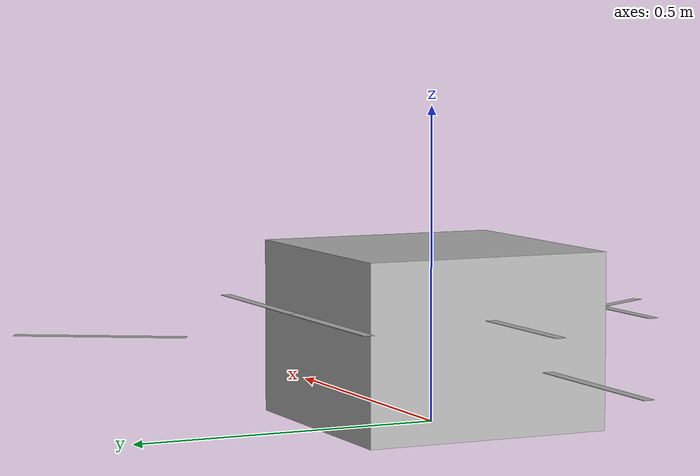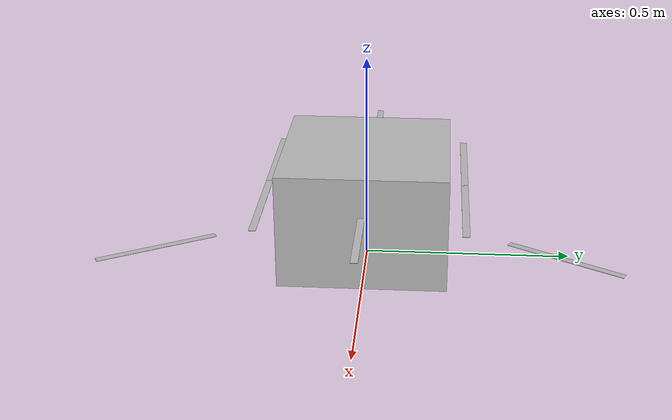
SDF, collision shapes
<?xml version="1.0" encoding="UTF-8"?>
<sdf version='1.9'>
  <model name='torsional_uav'>
    <pose>0 0 0.14113 0 0 0</pose>
    <self_collide>false</self_collide>
    <static>false</static>
    <link name="base_link">
      <inertial>
        <pose>0 0 0 0 0 0</pose>
        <mass>3.0</mass>
        <inertia>
          <ixx>0.02166666666666667</ixx>
          <ixy>0</ixy>
          <ixz>0</ixz>
          <iyy>0.02166666666666667</iyy>
          <iyz>0</iyz>
          <izz>0.04000000000000001</izz>
        </inertia>
      </inertial>
      <gravity>true</gravity>
      <velocity_decay/>
      <visual name="base_link_visual">
        <pose>0 0 0  0 0 0</pose>
        <geometry>
          <mesh>
            <scale>1 1 1</scale>
            <uri>model://torsional_uav/meshes/f550_frame_board.dae</uri>
          </mesh>
        </geometry>
      </visual>
      <collision name="base_link_collision">
        <pose> 0 0 0 0 0 0</pose>
        <geometry>
          <box>
            <size>0.40 0.40 0.278 </size>
          </box>
        </geometry>
        <surface>
          <contact>
            <ode>
              <min_depth>0.001</min_depth>
              <max_vel>0</max_vel>
            </ode>
          </contact>
          <friction>
            <ode/>
          </friction>
        </surface>
      </collision>
      <sensor name="air_pressure_sensor" type="air_pressure">
        <always_on>1</always_on>
        <update_rate>50</update_rate>
        <air_pressure>
          <pressure>
            <noise type="gaussian">
              <mean>0</mean>
              <stddev>0.01</stddev>
            </noise>
          </pressure>
        </air_pressure>
      </sensor>
      <sensor name="imu_sensor" type="imu">
        <always_on>1</always_on>
        <update_rate>250</update_rate>
      </sensor>
    </link>

    <link name="torsional_manipulator">
        <gravity>true</gravity>
        <self_collide>false</self_collide>
        <velocity_decay/>
        <pose>0 0 0 0 0 0</pose>
        <inertial>
            <mass>0.5</mass>
            <inertia>
              <ixx>3.8464910483993325e-07</ixx>
              <iyy>2.6115851691700804e-05</iyy>
              <izz>2.649858234714004e-05</izz>
            </inertia>
        </inertial>
       <visual name="torsional_manipulator_visual">
        <pose>0 0 0 0 0 0</pose>
        <geometry>
          <mesh>
            <scale>1 1 1</scale>
            <uri>model://torsional_uav/meshes/torsional_manipulator.dae</uri>
          </mesh>
        </geometry>
      </visual>
      <collision name="torsional_manipulator_collision">
        <pose>0 0 0 0 0 0 </pose>
        <geometry>
          <box>
            <size>0.40 0.40 0.278 </size>
          </box>
        </geometry>
        <surface>
          <contact>
            <ode>
              <min_depth>0.001</min_depth>
              <max_vel>0</max_vel>
            </ode>
          </contact>
          <friction>
            <ode/>
          </friction>
        </surface>
      </collision>
    </link>
    <joint name="torsional_manipulator_joint" type="fixed">
      <parent>base_link</parent>
      <child>torsional_manipulator</child>
      <pose> 0 0 -0.0375 0 0 0 </pose>
        <sensor name= 'forcetorque' type='force_torque'>
            <always_on>true</always_on>
            <update_rate>100.0</update_rate>
            <visualize>true</visualize>
            <force_torque>
                <frame>sensor</frame>
                <measure_direction>child_to_parent</measure_direction>
            </force_torque>
            <topic>leptrino_force_sensor/sensor_wrench</topic>
        </sensor>
    </joint>

<!-- ROTORS   -->
    <link name="rotor_0">
        <gravity>true</gravity>
        <self_collide>false</self_collide>
        <velocity_decay/>
        <pose>0.275 0 0.043 0 0 0</pose>
        <inertial>
            <mass>0.016076923076923075</mass>
            <inertia>
              <ixx>3.8464910483993325e-07</ixx>
              <iyy>2.6115851691700804e-05</iyy>
              <izz>2.649858234714004e-05</izz>
            </inertia>
        </inertial>
       <visual name="rotor_0_visual">
        <pose>0 0 0 0 0 0</pose>
        <geometry>
          <mesh>
            <scale>1 1 1</scale>
            <uri>model://torsional_uav/meshes/holybro_propeller_ccw.dae</uri>
          </mesh>
        </geometry>
      </visual>
      <collision name="rotor_0_collision">
        <pose>0 0 0 0 0 0 </pose>
        <geometry>
          <box>
            <size>0.2792307692307692 0.016923076923076923 0.0008461538461538462</size>
          </box>
        </geometry>
        <surface>
          <contact>
            <ode>
              <min_depth>0.001</min_depth>
              <max_vel>0</max_vel>
            </ode>
          </contact>
          <friction>
            <ode/>
          </friction>
        </surface>
      </collision>
    </link>
    <joint name="rotor_0_joint" type="revolute">
      <parent>base_link</parent>
      <child>rotor_0</child>
      <axis>
        <xyz>0 0 1</xyz>
        <limit>
          <lower>-1e+16</lower>
          <upper>1e+16</upper>
        </limit>
        <dynamics>
          <spring_reference>0</spring_reference>
          <spring_stiffness>0</spring_stiffness>
        </dynamics>
      </axis>
    </joint>

    <link name="rotor_1">
        <gravity>true</gravity>
        <self_collide>false</self_collide>
        <velocity_decay/>
        <pose>-0.275 0 0.043 0 0 0</pose>
        <inertial>
            <mass>0.016076923076923075</mass>
            <inertia>
              <ixx>3.8464910483993325e-07</ixx>
              <iyy>2.6115851691700804e-05</iyy>
              <izz>2.649858234714004e-05</izz>
            </inertia>
        </inertial>
       <visual name="rotor_1_visual">
        <pose>0 0 0 0 0 0</pose>
        <geometry>
          <mesh>
            <scale>1 1 1</scale>
            <uri>model://torsional_uav/meshes/holybro_propeller_ccw.dae</uri>
          </mesh>
        </geometry>
      </visual>
      <collision name="rotor_1_collision">
        <pose>0 0 0 0 0 0 </pose>
        <geometry>
          <box>
            <size>0.2792307692307692 0.016923076923076923 0.0008461538461538462</size>
          </box>
        </geometry>
        <surface>
          <contact>
            <ode>
              <min_depth>0.001</min_depth>
              <max_vel>0</max_vel>
            </ode>
          </contact>
          <friction>
            <ode/>
          </friction>
        </surface>
      </collision>
    </link>
    <joint name="rotor_1_joint" type="revolute">
      <parent>base_link</parent>
      <child>rotor_1</child>
      <axis>
        <xyz>0 0 1</xyz>
        <limit>
          <lower>-1e+16</lower>
          <upper>1e+16</upper>
        </limit>
        <dynamics>
          <spring_reference>0</spring_reference>
          <spring_stiffness>0</spring_stiffness>
        </dynamics>
      </axis>
    </joint>

    <link name="rotor_2">
        <gravity>true</gravity>
        <self_collide>false</self_collide>
        <velocity_decay/>
        <pose> -0.137567 0.238249 0.043 0 0 0</pose>
        <inertial>
            <mass>0.016076923076923075</mass>
            <inertia>
              <ixx>3.8464910483993325e-07</ixx>
              <iyy>2.6115851691700804e-05</iyy>
              <izz>2.649858234714004e-05</izz>
            </inertia>
        </inertial>
       <visual name="rotor_2_visual">
        <pose>0 0 0 0 0 0</pose>
        <geometry>
          <mesh>
            <scale>1 1 1</scale>
            <uri>model://torsional_uav/meshes/holybro_propeller_ccw.dae</uri>
          </mesh>
        </geometry>
      </visual>
      <collision name="rotor_2_collision">
        <pose>0 0 0 0 0 0 </pose>
        <geometry>
          <box>
            <size>0.2792307692307692 0.016923076923076923 0.0008461538461538462</size>
          </box>
        </geometry>
        <surface>
          <contact>
            <ode>
              <min_depth>0.001</min_depth>
              <max_vel>0</max_vel>
            </ode>
          </contact>
          <friction>
            <ode/>
          </friction>
        </surface>
      </collision>
    </link>
    <joint name="rotor_2_joint" type="revolute">
      <parent>base_link</parent>
      <child>rotor_2</child>
      <axis>
        <xyz>0 0 1</xyz>
        <limit>
          <lower>-1e+16</lower>
          <upper>1e+16</upper>
        </limit>
        <dynamics>
          <spring_reference>0</spring_reference>
          <spring_stiffness>0</spring_stiffness>
        </dynamics>
      </axis>
    </joint>

    <link name="rotor_3">
        <gravity>true</gravity>
        <self_collide>false</self_collide>
        <velocity_decay/>
        <pose>0.137567 -0.238249  0.043 0 0 0</pose>
        <inertial>
            <mass>0.016076923076923075</mass>
            <inertia>
              <ixx>3.8464910483993325e-07</ixx>
              <iyy>2.6115851691700804e-05</iyy>
              <izz>2.649858234714004e-05</izz>
            </inertia>
        </inertial>
       <visual name="rotor_3_visual">
        <pose>0 0 0 0 0 0</pose>
        <geometry>
          <mesh>
            <scale>1 1 1</scale>
            <uri>model://torsional_uav/meshes/holybro_propeller_ccw.dae</uri>
          </mesh>
        </geometry>
      </visual>
      <collision name="rotor_3_collision">
        <pose>0 0 0 0 0 0 </pose>
        <geometry>
          <box>
            <size>0.2792307692307692 0.016923076923076923 0.0008461538461538462</size>
          </box>
        </geometry>
        <surface>
          <contact>
            <ode>
              <min_depth>0.001</min_depth>
              <max_vel>0</max_vel>
            </ode>
          </contact>
          <friction>
            <ode/>
          </friction>
        </surface>
      </collision>
    </link>
    <joint name="rotor_3_joint" type="revolute">
      <parent>base_link</parent>
      <child>rotor_3</child>
      <axis>
        <xyz>0 0 1</xyz>
        <limit>
          <lower>-1e+16</lower>
          <upper>1e+16</upper>
        </limit>
        <dynamics>
          <spring_reference>0</spring_reference>
          <spring_stiffness>0</spring_stiffness>
        </dynamics>
      </axis>
    </joint>

    <link name="rotor_4">
        <gravity>true</gravity>
        <self_collide>false</self_collide>
        <velocity_decay/>
        <pose> 0.137567 0.238249 0.043 0 0 0</pose>
        <inertial>
            <mass>0.016076923076923075</mass>
            <inertia>
              <ixx>3.8464910483993325e-07</ixx>
              <iyy>2.6115851691700804e-05</iyy>
              <izz>2.649858234714004e-05</izz>
            </inertia>
        </inertial>
       <visual name="rotor_4_visual">
        <pose>0 0 0 0 0 0</pose>
        <geometry>
          <mesh>
            <scale>1 1 1</scale>
            <uri>model://torsional_uav/meshes/holybro_propeller_ccw.dae</uri>
          </mesh>
        </geometry>
      </visual>
      <collision name="rotor_4_collision">
        <pose>0 0 0 0 0 0 </pose>
        <geometry>
          <box>
            <size>0.2792307692307692 0.016923076923076923 0.0008461538461538462</size>
          </box>
        </geometry>
        <surface>
          <contact>
            <ode>
              <min_depth>0.001</min_depth>
              <max_vel>0</max_vel>
            </ode>
          </contact>
          <friction>
            <ode/>
          </friction>
        </surface>
      </collision>
    </link>
    <joint name="rotor_4_joint" type="revolute">
      <parent>base_link</parent>
      <child>rotor_4</child>
      <axis>
        <xyz>0 0 1</xyz>
        <limit>
          <lower>-1e+16</lower>
          <upper>1e+16</upper>
        </limit>
        <dynamics>
          <spring_reference>0</spring_reference>
          <spring_stiffness>0</spring_stiffness>
        </dynamics>
      </axis>
    </joint>

    <link name="rotor_5">
        <gravity>true</gravity>
        <self_collide>false</self_collide>
        <velocity_decay/>
        <pose> -0.137567 -0.238249 0.043 0 0 0</pose>
        <inertial>
            <mass>0.016076923076923075</mass>
            <inertia>
              <ixx>3.8464910483993325e-07</ixx>
              <iyy>2.6115851691700804e-05</iyy>
              <izz>2.649858234714004e-05</izz>
            </inertia>
        </inertial>
       <visual name="rotor_5_visual">
        <pose>0 0 0 0 0 0</pose>
        <geometry>
          <mesh>
            <scale>1 1 1</scale>
            <uri>model://torsional_uav/meshes/holybro_propeller_ccw.dae</uri>
          </mesh>
        </geometry>
      </visual>
      <collision name="rotor_5_collision">
        <pose>0 0 0 0 0 0 </pose>
        <geometry>
          <box>
            <size>0.2792307692307692 0.016923076923076923 0.0008461538461538462</size>
          </box>
        </geometry>
        <surface>
          <contact>
            <ode>
              <min_depth>0.001</min_depth>
              <max_vel>0</max_vel>
            </ode>
          </contact>
          <friction>
            <ode/>
          </friction>
        </surface>
      </collision>
    </link>
    <joint name="rotor_5_joint" type="revolute">
      <parent>base_link</parent>
      <child>rotor_5</child>
      <axis>
        <xyz>0 0 1</xyz>
        <limit>
          <lower>-1e+16</lower>
          <upper>1e+16</upper>
        </limit>
        <dynamics>
          <spring_reference>0</spring_reference>
          <spring_stiffness>0</spring_stiffness>
        </dynamics>
      </axis>
    </joint>
    <!-- ROTOR END -->

    <!-- EDF -->
       <link name="edf_0_body">
        <gravity>true</gravity>
        <self_collide>false</self_collide>
        <velocity_decay/>
        <pose>-0.516258 0 -0.0115 0 0 0</pose>
        <inertial>
            <mass>0.016076923076923075</mass>
            <inertia>
              <ixx>3.8464910483993325e-07</ixx>
              <iyy>2.6115851691700804e-05</iyy>
              <izz>2.649858234714004e-05</izz>
            </inertia>
        </inertial>
       <visual name="edf_0_visual">
        <pose>0 0 0 0 0 0</pose>
        <geometry>
          <mesh>
            <scale>1 1 1</scale>
            <uri>model://torsional_uav/meshes/torsional_housing.dae</uri>
          </mesh>
        </geometry>
      </visual>
      <collision name="edf_0_collision">
        <pose>0 0 0 0 0 0 </pose>
        <geometry>
          <box>
            <size>0.2792307692307692 0.016923076923076923 0.0008461538461538462</size>
          </box>
        </geometry>
        <surface>
          <contact>
            <ode>
              <min_depth>0.001</min_depth>
              <max_vel>0</max_vel>
            </ode>
          </contact>
          <friction>
            <ode/>
          </friction>
        </surface>
      </collision>
    </link>
    <joint name="edf_0_joint" type="revolute">
      <parent>base_link</parent>
      <child>edf_0_body</child>
      <axis>
        <xyz>0 0 1</xyz>
        <limit>
          <lower>-1e+16</lower>
          <upper>1e+16</upper>
        </limit>
        <dynamics>
          <spring_reference>0</spring_reference>
          <spring_stiffness>0</spring_stiffness>
        </dynamics>
      </axis>
    </joint>

    <link name="impeler_0">
        <gravity>true</gravity>
        <self_collide>false</self_collide>
        <velocity_decay/>
        <pose>-0.516258 0 -0.0115 0 0 0</pose>
        <inertial>
            <mass>0.016076923076923075</mass>
            <inertia>
              <ixx>3.8464910483993325e-07</ixx>
              <iyy>2.6115851691700804e-05</iyy>
              <izz>2.649858234714004e-05</izz>
            </inertia>
        </inertial>
       <visual name="impeler_0_visual">
        <pose>0 0 0 0 0 0</pose>
        <geometry>
          <mesh>
            <scale>1 1 1</scale>
            <uri>model://torsional_uav/meshes/impeler.dae</uri>
          </mesh>
        </geometry>
      </visual>
      <collision name="impeler_0_collision">
        <pose>0 0 0 0 0 0 </pose>
        <geometry>
          <box>
            <size>0.2792307692307692 0.016923076923076923 0.0008461538461538462</size>
          </box>
        </geometry>
        <surface>
          <contact>
            <ode>
              <min_depth>0.001</min_depth>
              <max_vel>0</max_vel>
            </ode>
          </contact>
          <friction>
            <ode/>
          </friction>
        </surface>
      </collision>
    </link>
    <joint name="impeler_0_joint" type="revolute">
      <parent>edf_0_body</parent>
      <child>impeler_0</child>
      <axis>
        <xyz>1 0 0</xyz>
        <limit>
          <lower>-1e+16</lower>
          <upper>1e+16</upper>
        </limit>
        <dynamics>
          <spring_reference>0</spring_reference>
          <spring_stiffness>0</spring_stiffness>
        </dynamics>
      </axis>
    </joint>

    <link name="edf_1_body">
        <gravity>true</gravity>
        <self_collide>false</self_collide>
        <velocity_decay/>
        <pose> 0.26532 -0.459357 -0.0115  0 0 2.0944 </pose>
        <inertial>
            <mass>0.016076923076923075</mass>
            <inertia>
              <ixx>3.8464910483993325e-07</ixx>
              <iyy>2.6115851691700804e-05</iyy>
              <izz>2.649858234714004e-05</izz>
            </inertia>
        </inertial>
       <visual name="edf_1_visual">
        <pose>0 0 0 0 0 0</pose>
        <geometry>
          <mesh>
            <scale>1 1 1</scale>
            <uri>model://torsional_uav/meshes/torsional_housing.dae</uri>
          </mesh>
        </geometry>
      </visual>
      <collision name="edf_1_collision">
        <pose>0 0 0 0 0 0 </pose>
        <geometry>
          <box>
            <size>0.2792307692307692 0.016923076923076923 0.0008461538461538462</size>
          </box>
        </geometry>
        <surface>
          <contact>
            <ode>
              <min_depth>0.001</min_depth>
              <max_vel>0</max_vel>
            </ode>
          </contact>
          <friction>
            <ode/>
          </friction>
        </surface>
      </collision>
    </link>
    <joint name="edf_1_joint" type="revolute">
      <parent>base_link</parent>
      <child>edf_1_body</child>
      <axis>
        <xyz>0 0 1</xyz>
        <limit>
          <lower>-1e+16</lower>
          <upper>1e+16</upper>
        </limit>
        <dynamics>
          <spring_reference>0</spring_reference>
          <spring_stiffness>0</spring_stiffness>
        </dynamics>
      </axis>
    </joint>

    <link name="impeler_1">
        <gravity>true</gravity>
        <self_collide>false</self_collide>
        <velocity_decay/>
        <pose> 0.26532 -0.459357 -0.0115 0 0 2.0944</pose>
        <inertial>
            <mass>0.016076923076923075</mass>
            <inertia>
              <ixx>3.8464910483993325e-07</ixx>
              <iyy>2.6115851691700804e-05</iyy>
              <izz>2.649858234714004e-05</izz>
            </inertia>
        </inertial>
       <visual name="impeler_1_visual">
        <pose>0 0 0 0 0 0</pose>
        <geometry>
          <mesh>
            <scale>1 1 1</scale>
            <uri>model://torsional_uav/meshes/impeler.dae</uri>
          </mesh>
        </geometry>
      </visual>
      <collision name="impeler_1_collision">
        <pose>0 0 0 0 0 0 </pose>
        <geometry>
          <box>
            <size>0.2792307692307692 0.016923076923076923 0.0008461538461538462</size>
          </box>
        </geometry>
        <surface>
          <contact>
            <ode>
              <min_depth>0.001</min_depth>
              <max_vel>0</max_vel>
            </ode>
          </contact>
          <friction>
            <ode/>
          </friction>
        </surface>
      </collision>
    </link>
    <joint name="impeler_1_joint" type="revolute">
      <parent>edf_1_body</parent>
      <child>impeler_1</child>
      <axis>
        <xyz>1 0 0</xyz>
        <limit>
          <lower>-1e+16</lower>
          <upper>1e+16</upper>
        </limit>
        <dynamics>
          <spring_reference>0</spring_reference>
          <spring_stiffness>0</spring_stiffness>
        </dynamics>
      </axis>
    </joint>

       <link name="edf_2_body">
        <gravity>true</gravity>
        <self_collide>false</self_collide>
        <velocity_decay/>
        <pose> 0.26532 0.459357 -0.0115  0 0 -2.0944 </pose>
        <inertial>
            <mass>0.016076923076923075</mass>
            <inertia>
              <ixx>3.8464910483993325e-07</ixx>
              <iyy>2.6115851691700804e-05</iyy>
              <izz>2.649858234714004e-05</izz>
            </inertia>
        </inertial>
       <visual name="edf_2_visual">
        <pose>0 0 0 0 0 0</pose>
        <geometry>
          <mesh>
            <scale>1 1 1</scale>
            <uri>model://torsional_uav/meshes/torsional_housing.dae</uri>
          </mesh>
        </geometry>
      </visual>
      <collision name="edf_2_collision">
        <pose>0 0 0 0 0 0 </pose>
        <geometry>
          <box>
            <size>0.2792307692307692 0.016923076923076923 0.0008461538461538462</size>
          </box>
        </geometry>
        <surface>
          <contact>
            <ode>
              <min_depth>0.001</min_depth>
              <max_vel>0</max_vel>
            </ode>
          </contact>
          <friction>
            <ode/>
          </friction>
        </surface>
      </collision>
    </link>
    <joint name="edf_2_joint" type="revolute">
      <parent>base_link</parent>
      <child>edf_2_body</child>
      <axis>
        <xyz>0 0 1</xyz>
        <limit>
          <lower>-1e+16</lower>
          <upper>1e+16</upper>
        </limit>
        <dynamics>
          <spring_reference>0</spring_reference>
          <spring_stiffness>0</spring_stiffness>
        </dynamics>
      </axis>
    </joint>

    <link name="impeler_2">
        <gravity>true</gravity>
        <self_collide>false</self_collide>
        <velocity_decay/>
        <pose> 0.26532 0.459357 -0.0115 0 0 -2.0944</pose>
        <inertial>
            <mass>0.016076923076923075</mass>
            <inertia>
              <ixx>3.8464910483993325e-07</ixx>
              <iyy>2.6115851691700804e-05</iyy>
              <izz>2.649858234714004e-05</izz>
            </inertia>
        </inertial>
       <visual name="impeler_2_visual">
        <pose>0 0 0 0 0 0</pose>
        <geometry>
          <mesh>
            <scale>1 1 1</scale>
            <uri>model://torsional_uav/meshes/impeler.dae</uri>
          </mesh>
        </geometry>
      </visual>
      <collision name="impeler_2_collision">
        <pose>0 0 0 0 0 0 </pose>
        <geometry>
          <box>
            <size>0.2792307692307692 0.016923076923076923 0.0008461538461538462</size>
          </box>
        </geometry>
        <surface>
          <contact>
            <ode>
              <min_depth>0.001</min_depth>
              <max_vel>0</max_vel>
            </ode>
          </contact>
          <friction>
            <ode/>
          </friction>
        </surface>
      </collision>
    </link>
    <joint name="impeler_2_joint" type="revolute">
      <parent>edf_2_body</parent>
      <child>impeler_2</child>
      <axis>
        <xyz>1 0 0</xyz>
        <limit>
          <lower>-1e+16</lower>
          <upper>1e+16</upper>
        </limit>
        <dynamics>
          <spring_reference>0</spring_reference>
          <spring_stiffness>0</spring_stiffness>
        </dynamics>
      </axis>
    </joint>
    <!-- EDF END -->

   <plugin filename="gz-sim-multicopter-motor-model-system" name="gz::sim::systems::MulticopterMotorModel">
      <jointName>rotor_0_joint</jointName>
      <linkName>rotor_0</linkName>
      <turningDirection>ccw</turningDirection>
      <timeConstantUp>0.0125</timeConstantUp>
      <timeConstantDown>0.025</timeConstantDown>
      <maxRotVelocity>1000.0</maxRotVelocity>
      <motorConstant>8.54858e-06</motorConstant>
      <momentConstant>0.016</momentConstant>
      <commandSubTopic>command/motor_speed</commandSubTopic>
      <motorNumber>0</motorNumber>
      <rotorDragCoefficient>8.06428e-05</rotorDragCoefficient>
      <rollingMomentCoefficient>1e-06</rollingMomentCoefficient>
      <rotorVelocitySlowdownSim>10</rotorVelocitySlowdownSim>
      <motorType>velocity</motorType>
    </plugin>
    <plugin filename="gz-sim-multicopter-motor-model-system" name="gz::sim::systems::MulticopterMotorModel">
      <jointName>rotor_1_joint</jointName>
      <linkName>rotor_1</linkName>
      <turningDirection>ccw</turningDirection>
      <timeConstantUp>0.0125</timeConstantUp>
      <timeConstantDown>0.025</timeConstantDown>
      <maxRotVelocity>1000.0</maxRotVelocity>
      <motorConstant>8.54858e-06</motorConstant>
      <momentConstant>0.016</momentConstant>
      <commandSubTopic>command/motor_speed</commandSubTopic>
      <motorNumber>1</motorNumber>
      <rotorDragCoefficient>8.06428e-05</rotorDragCoefficient>
      <rollingMomentCoefficient>1e-06</rollingMomentCoefficient>
      <rotorVelocitySlowdownSim>10</rotorVelocitySlowdownSim>
      <motorType>velocity</motorType>
    </plugin>
    <plugin filename="gz-sim-multicopter-motor-model-system" name="gz::sim::systems::MulticopterMotorModel">
      <jointName>rotor_2_joint</jointName>
      <linkName>rotor_2</linkName>
      <turningDirection>cw</turningDirection>
      <timeConstantUp>0.0125</timeConstantUp>
      <timeConstantDown>0.025</timeConstantDown>
      <maxRotVelocity>1000.0</maxRotVelocity>
      <motorConstant>8.54858e-06</motorConstant>
      <momentConstant>0.016</momentConstant>
      <commandSubTopic>command/motor_speed</commandSubTopic>
      <motorNumber>2</motorNumber>
      <rotorDragCoefficient>8.06428e-05</rotorDragCoefficient>
      <rollingMomentCoefficient>1e-06</rollingMomentCoefficient>
      <rotorVelocitySlowdownSim>10</rotorVelocitySlowdownSim>
      <motorType>velocity</motorType>
    </plugin>
    <plugin filename="gz-sim-multicopter-motor-model-system" name="gz::sim::systems::MulticopterMotorModel">
      <jointName>rotor_3_joint</jointName>
      <linkName>rotor_3</linkName>
      <turningDirection>cw</turningDirection>
      <timeConstantUp>0.0125</timeConstantUp>
      <timeConstantDown>0.025</timeConstantDown>
      <maxRotVelocity>1000.0</maxRotVelocity>
      <motorConstant>8.54858e-06</motorConstant>
      <momentConstant>0.016</momentConstant>
      <commandSubTopic>command/motor_speed</commandSubTopic>
      <motorNumber>3</motorNumber>
      <rotorDragCoefficient>8.06428e-05</rotorDragCoefficient>
      <rollingMomentCoefficient>1e-06</rollingMomentCoefficient>
      <rotorVelocitySlowdownSim>10</rotorVelocitySlowdownSim>
      <motorType>velocity</motorType>
    </plugin>

    <plugin filename="gz-sim-multicopter-motor-model-system" name="gz::sim::systems::MulticopterMotorModel">
      <jointName>rotor_4_joint</jointName>
      <linkName>rotor_4</linkName>
      <turningDirection>cw</turningDirection>
      <timeConstantUp>0.0125</timeConstantUp>
      <timeConstantDown>0.025</timeConstantDown>
      <maxRotVelocity>1000.0</maxRotVelocity>
      <motorConstant>8.54858e-06</motorConstant>
      <momentConstant>0.016</momentConstant>
      <commandSubTopic>command/motor_speed</commandSubTopic>
      <motorNumber>4</motorNumber>
      <rotorDragCoefficient>8.06428e-05</rotorDragCoefficient>
      <rollingMomentCoefficient>1e-06</rollingMomentCoefficient>
      <rotorVelocitySlowdownSim>10</rotorVelocitySlowdownSim>
      <motorType>velocity</motorType>
    </plugin>

    <plugin filename="gz-sim-multicopter-motor-model-system" name="gz::sim::systems::MulticopterMotorModel">
      <jointName>rotor_5_joint</jointName>
      <linkName>rotor_5</linkName>
      <turningDirection>cw</turningDirection>
      <timeConstantUp>0.0125</timeConstantUp>
      <timeConstantDown>0.025</timeConstantDown>
      <maxRotVelocity>1000.0</maxRotVelocity>
      <motorConstant>8.54858e-06</motorConstant>
      <momentConstant>0.016</momentConstant>
      <commandSubTopic>command/motor_speed</commandSubTopic>
      <motorNumber>5</motorNumber>
      <rotorDragCoefficient>8.06428e-05</rotorDragCoefficient>
      <rollingMomentCoefficient>1e-06</rollingMomentCoefficient>
      <rotorVelocitySlowdownSim>10</rotorVelocitySlowdownSim>
      <motorType>velocity</motorType>
    </plugin>

    <plugin filename="gz-sim-multicopter-motor-model-system" name="gz::sim::systems::MulticopterMotorModel">
      <jointName>impeler_0_joint"</jointName>
      <linkName>impeler_0</linkName>
      <turningDirection>cw</turningDirection>
      <timeConstantUp>0.0125</timeConstantUp>
      <timeConstantDown>0.025</timeConstantDown>
      <maxRotVelocity>1000.0</maxRotVelocity>
      <motorConstant>8.54858e-06</motorConstant>
      <momentConstant>0.016</momentConstant>
      <commandSubTopic>command/motor_speed</commandSubTopic>
      <motorNumber>6</motorNumber>
      <rotorDragCoefficient>8.06428e-05</rotorDragCoefficient>
      <rollingMomentCoefficient>1e-06</rollingMomentCoefficient>
      <rotorVelocitySlowdownSim>10</rotorVelocitySlowdownSim>
      <motorType>velocity</motorType>
    </plugin>

    <plugin filename="gz-sim-multicopter-motor-model-system" name="gz::sim::systems::MulticopterMotorModel">
      <jointName>impeler_1_joint"</jointName>
      <linkName>impeler_1</linkName>
      <turningDirection>cw</turningDirection>
      <timeConstantUp>0.0125</timeConstantUp>
      <timeConstantDown>0.025</timeConstantDown>
      <maxRotVelocity>1000.0</maxRotVelocity>
      <motorConstant>8.54858e-06</motorConstant>
      <momentConstant>0.016</momentConstant>
      <commandSubTopic>command/motor_speed</commandSubTopic>
      <motorNumber>7</motorNumber>
      <rotorDragCoefficient>8.06428e-05</rotorDragCoefficient>
      <rollingMomentCoefficient>1e-06</rollingMomentCoefficient>
      <rotorVelocitySlowdownSim>10</rotorVelocitySlowdownSim>
      <motorType>velocity</motorType>
    </plugin>

    <!-- Servos Plugins -->
    <plugin
      filename="gz-sim-joint-position-controller-system" name="gz::sim::systems::JointPositionController">
      <joint_name>edf_0_joint</joint_name>
      <sub_topic>servo_0</sub_topic>
      <p_gain>10.0</p_gain>
    </plugin>

    <plugin
      filename="gz-sim-joint-position-controller-system" name="gz::sim::systems::JointPositionController">
      <joint_name>edf_1_joint</joint_name>
      <sub_topic>servo_1</sub_topic>
      <p_gain>10.0</p_gain>
    </plugin>

    <plugin
      filename="gz-sim-joint-position-controller-system" name="gz::sim::systems::JointPositionController">
      <joint_name>edf_2_joint</joint_name>
      <sub_topic>servo_2</sub_topic>
      <p_gain>10.0</p_gain>
    </plugin>
    <!-- Servos Plugins END -->
  </model>
</sdf>
